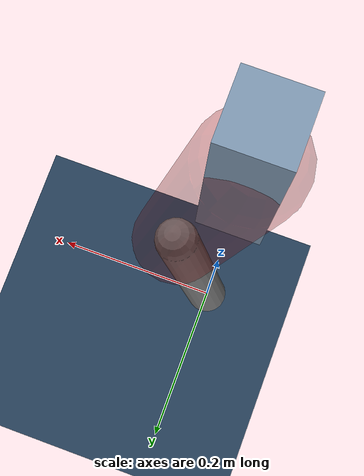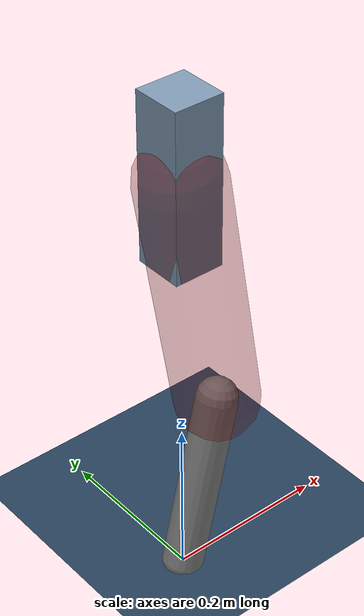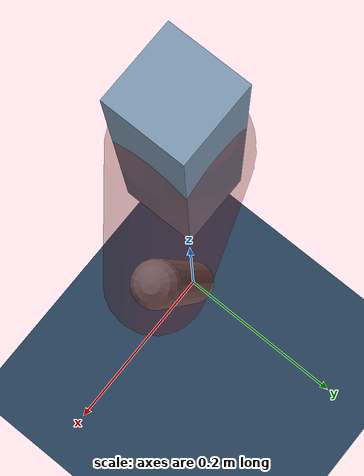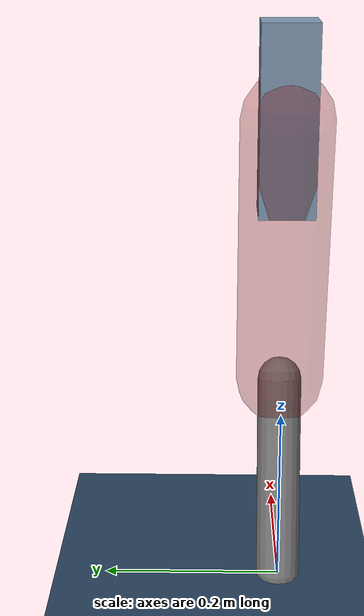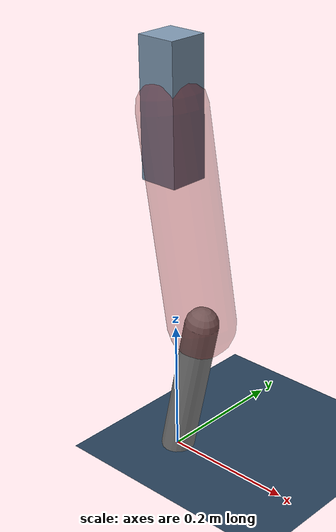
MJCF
<mujoco model="Hopper2D">
	<compiler inertiafromgeom="true" angle="radian" />
	<option timestep="0.001" integrator="implicit" cone="elliptic" solver="Newton" tolerance="1e-10" />

	<default>
		<geom contype="1" conaffinity="1" condim="3" friction="2 0.005 0.0001" solref="0.005 1" />
		<joint limited="true" damping="0.1" />
	</default>

	<asset>
		<texture name="skybox" type="skybox" builtin="gradient" rgb1=".4 .6 .8" rgb2="0 0 0" width="800" height="800" />
		<texture name="grid" type="2d" builtin="checker" rgb1=".1 .2 .3" rgb2=".2 .3 .4" width="300" height="300" mark="edge" markrgb=".2 .3 .4" />
		<material name="ground" texture="grid" texrepeat="1 1" texuniform="true" reflectance="0.1" />
		<material name="leg" rgba="0.5 0.6 0.7 1" />
	</asset>

	<worldbody>

		<geom name="floor" type="plane" size="5 5 0.25" material="ground" />

		<light directional="false" diffuse="0.8 0.8 0.8" specular="0.3 0.3 0.3" pos="0 0 2" dir="0 0 -1" />
		<light mode="targetbodycom" target="base" directional="false" diffuse="0.8 0.8 0.8" specular="0.3 0.3 0.3" pos="0 0 2" dir="0 0 -1" />

		<camera name="fixed" pos="0 -2 1" xyaxes="1 0 0 0 0 1" />
		<camera name="tracking" mode="trackcom" pos="0 -3 1" />

		<body name="root" pos="0 0 0.5323737230776403">
			<joint name="slide_x" type="slide" axis="1 0 0" range="-100 100" />
			<joint name="slide_z" type="slide" axis="0 0 1" range="0 10" />

			<body name="base" pos="0 0 0">
				<geom name="torso" type="box" size="0.03 0.03 0.1" mass="2.559" material="leg" />

				<body name="link1" pos="0 0 0" euler="0 1.405657706891653 0">
					<joint type="hinge" axis="0 -1 0" pos="0 0 0" name="hinge1" limited="true" range="-3.14 3.14" stiffness="0" damping="0.1" />
					<geom name="thigh" type="capsule" fromto="0 0 0 0.31165402181913715 0 0" size="0.05" rgba="0.5 0 0 0.3" mass="1.0203658589116704" />

					<body name="link2" pos="0.31165402181913715 0 0" euler="0 0.3890604293510563 0">
						<joint type="hinge" axis="0 -1 0" pos="0 0 0" name="hinge2" limited="true" range="-3.14 3.14" stiffness="0" damping="0.1" />
						<geom name="shank" type="capsule" fromto="0 0 0 0.23071970125850316 0 0" size="0.025" mass="0.4265757610068025" />

					</body>
				</body>
			</body>
		</body>
	</worldbody>

	<actuator>
		<motor name="torque1" joint="hinge1" ctrlrange="-52.60302764247567 52.60302764247567" ctrllimited="true" gear="1" />
		<motor name="torque2" joint="hinge2" ctrlrange="-101.92561997801005 101.92561997801005" ctrllimited="true" gear="1" />
	</actuator>
</mujoco>
